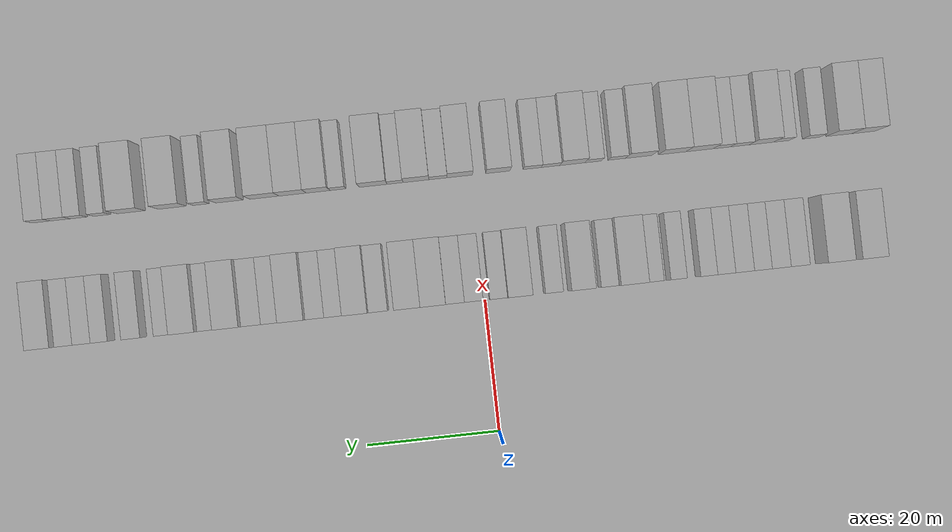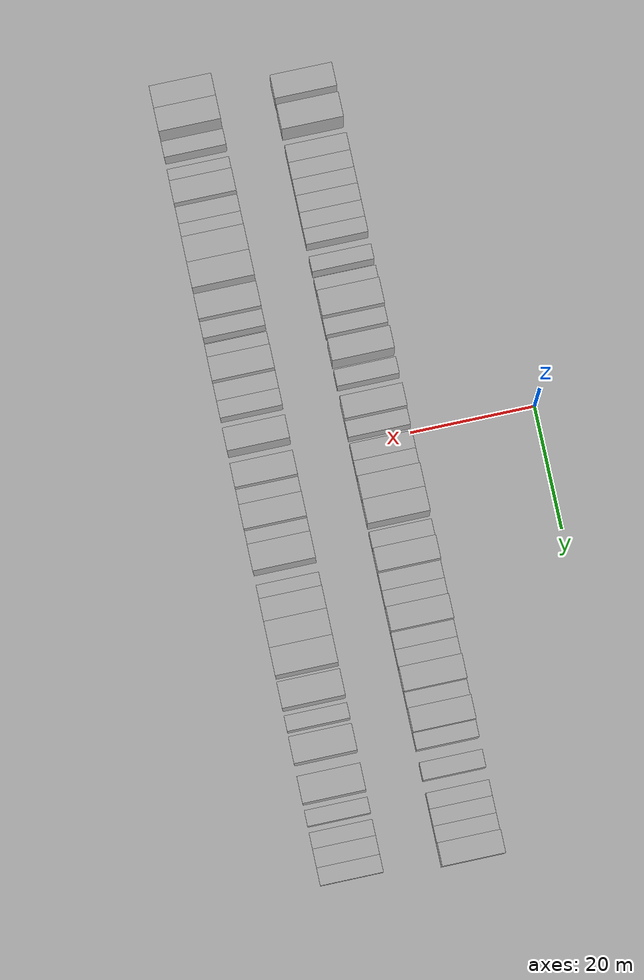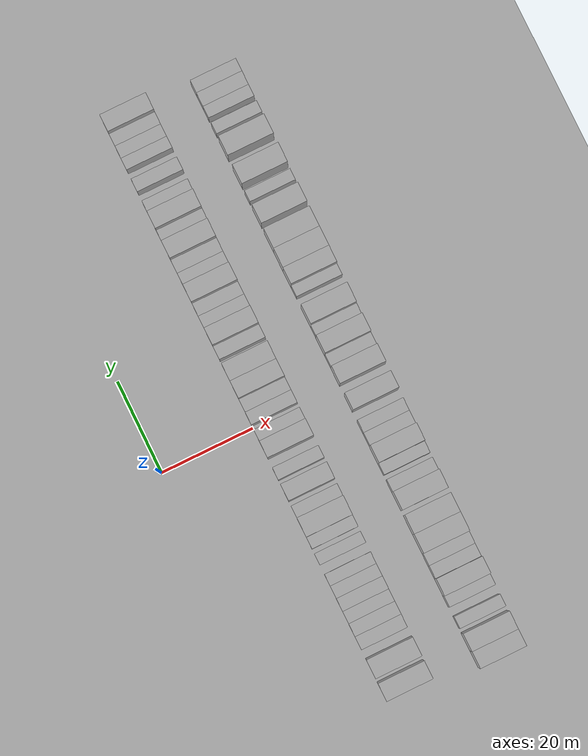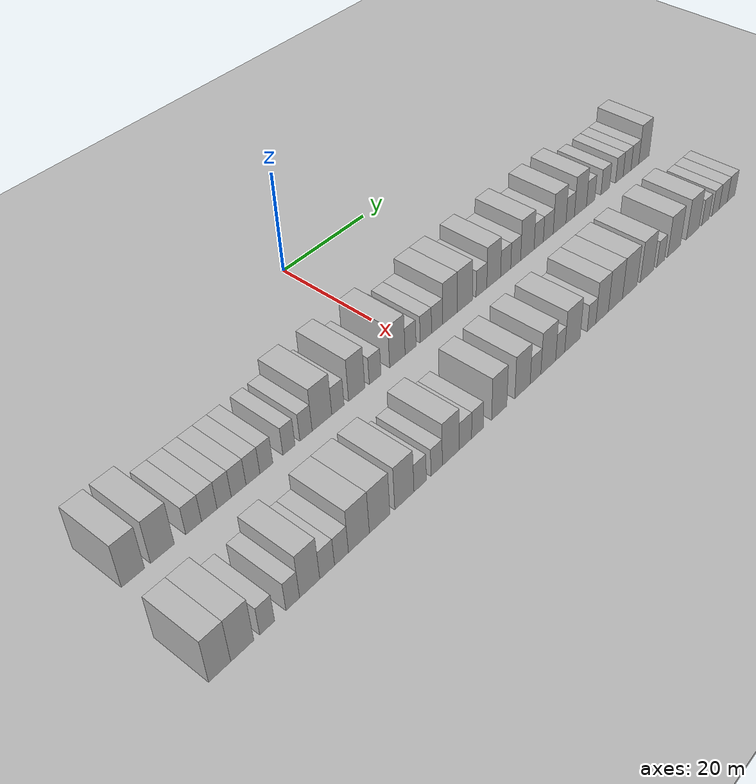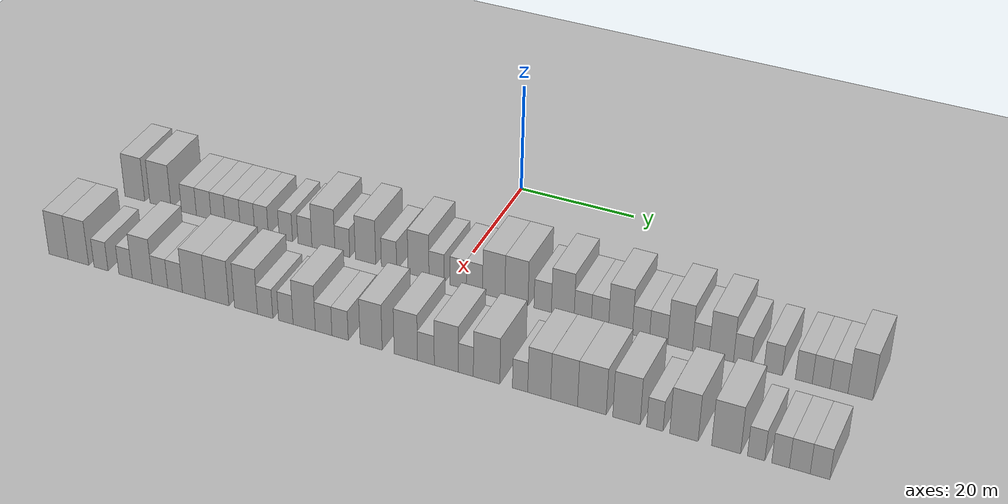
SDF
<sdf version="1.6">
 <world name="default">
  <include><name>ground_plane_1</name><uri>model://HANNAS_ground_plane</uri></include>
  <include>
   <name>ground_plane_2</name>
   <uri>model://HANNAS_ground_plane</uri>
   <pose>100 0 0  0 0 0</pose>
  </include>
  <model name="building_35">
   <static>1</static>
   <pose>25.0000 -57.3016 0 0.000000 0.000000 0.000000</pose>
   <link name="link">
    <pose>0 0 4.50 0 0 0</pose>
    <collision name="collision"><geometry><box><size>10.0000 3.8441 9.0000</size></box></geometry></collision>
    <visual name="visual">
     <cast_shadows>0</cast_shadows>
     <geometry><box><size>10.0000 3.8441 9.0000</size></box></geometry>
     <material>
      <script>
       <uri>model://HANNAS_wall/materials/scripts</uri>
       <uri>model://HANNAS_wall/materials/textures</uri>
       <name>vrc/HANNAS_wall</name>
      </script>
     </material>
    </visual>
   </link>
  </model>
  <model name="building_36">
   <static>1</static>
   <pose>25.0000 -52.3429 0 0.000000 0.000000 0.000000</pose>
   <link name="link">
    <pose>0 0 4.50 0 0 0</pose>
    <collision name="collision"><geometry><box><size>10.0000 4.0732 9.0000</size></box></geometry></collision>
    <visual name="visual">
     <cast_shadows>0</cast_shadows>
     <geometry><box><size>10.0000 4.0732 9.0000</size></box></geometry>
     <material>
      <script>
       <uri>model://HANNAS_wall/materials/scripts</uri>
       <uri>model://HANNAS_wall/materials/textures</uri>
       <name>vrc/HANNAS_wall</name>
      </script>
     </material>
    </visual>
   </link>
  </model>
  <model name="building_37">
   <static>1</static>
   <pose>25.0000 -46.8894 0 0.000000 0.000000 0.000000</pose>
   <link name="link">
    <pose>0 0 3.00 0 0 0</pose>
    <collision name="collision"><geometry><box><size>10.0000 2.8339 6.0000</size></box></geometry></collision>
    <visual name="visual">
     <cast_shadows>0</cast_shadows>
     <geometry><box><size>10.0000 2.8339 6.0000</size></box></geometry>
     <material>
      <script>
       <uri>model://HANNAS_wall/materials/scripts</uri>
       <uri>model://HANNAS_wall/materials/textures</uri>
       <name>vrc/HANNAS_wall</name>
      </script>
     </material>
    </visual>
   </link>
  </model>
  <model name="building_38">
   <static>1</static>
   <pose>25.0000 -44.0632 0 0.000000 0.000000 0.000000</pose>
   <link name="link">
    <pose>0 0 3.00 0 0 0</pose>
    <collision name="collision"><geometry><box><size>10.0000 2.8184 6.0000</size></box></geometry></collision>
    <visual name="visual">
     <cast_shadows>0</cast_shadows>
     <geometry><box><size>10.0000 2.8184 6.0000</size></box></geometry>
     <material>
      <script>
       <uri>model://HANNAS_wall/materials/scripts</uri>
       <uri>model://HANNAS_wall/materials/textures</uri>
       <name>vrc/HANNAS_wall</name>
      </script>
     </material>
    </visual>
   </link>
  </model>
  <model name="building_39">
   <static>1</static>
   <pose>25.0000 -41.3340 0 0.000000 0.000000 0.000000</pose>
   <link name="link">
    <pose>0 0 3.00 0 0 0</pose>
    <collision name="collision"><geometry><box><size>10.0000 2.6401 6.0000</size></box></geometry></collision>
    <visual name="visual">
     <cast_shadows>0</cast_shadows>
     <geometry><box><size>10.0000 2.6401 6.0000</size></box></geometry>
     <material>
      <script>
       <uri>model://HANNAS_wall/materials/scripts</uri>
       <uri>model://HANNAS_wall/materials/textures</uri>
       <name>vrc/HANNAS_wall</name>
      </script>
     </material>
    </visual>
   </link>
  </model>
  <model name="building_40">
   <static>1</static>
   <pose>25.0000 -38.6188 0 0.000000 0.000000 0.000000</pose>
   <link name="link">
    <pose>0 0 3.00 0 0 0</pose>
    <collision name="collision"><geometry><box><size>10.0000 2.7902 6.0000</size></box></geometry></collision>
    <visual name="visual">
     <cast_shadows>0</cast_shadows>
     <geometry><box><size>10.0000 2.7902 6.0000</size></box></geometry>
     <material>
      <script>
       <uri>model://HANNAS_wall/materials/scripts</uri>
       <uri>model://HANNAS_wall/materials/textures</uri>
       <name>vrc/HANNAS_wall</name>
      </script>
     </material>
    </visual>
   </link>
  </model>
  <model name="building_41">
   <static>1</static>
   <pose>25.0000 -35.8860 0 0.000000 0.000000 0.000000</pose>
   <link name="link">
    <pose>0 0 3.00 0 0 0</pose>
    <collision name="collision"><geometry><box><size>10.0000 2.6753 6.0000</size></box></geometry></collision>
    <visual name="visual">
     <cast_shadows>0</cast_shadows>
     <geometry><box><size>10.0000 2.6753 6.0000</size></box></geometry>
     <material>
      <script>
       <uri>model://HANNAS_wall/materials/scripts</uri>
       <uri>model://HANNAS_wall/materials/textures</uri>
       <name>vrc/HANNAS_wall</name>
      </script>
     </material>
    </visual>
   </link>
  </model>
  <model name="building_42">
   <static>1</static>
   <pose>25.0000 -33.2799 0 0.000000 0.000000 0.000000</pose>
   <link name="link">
    <pose>0 0 3.00 0 0 0</pose>
    <collision name="collision"><geometry><box><size>10.0000 2.5370 6.0000</size></box></geometry></collision>
    <visual name="visual">
     <cast_shadows>0</cast_shadows>
     <geometry><box><size>10.0000 2.5370 6.0000</size></box></geometry>
     <material>
      <script>
       <uri>model://HANNAS_wall/materials/scripts</uri>
       <uri>model://HANNAS_wall/materials/textures</uri>
       <name>vrc/HANNAS_wall</name>
      </script>
     </material>
    </visual>
   </link>
  </model>
  <model name="building_43">
   <static>1</static>
   <pose>25.0000 -28.7839 0 0.000000 0.000000 0.000000</pose>
   <link name="link">
    <pose>0 0 3.00 0 0 0</pose>
    <collision name="collision"><geometry><box><size>10.0000 2.4548 6.0000</size></box></geometry></collision>
    <visual name="visual">
     <cast_shadows>0</cast_shadows>
     <geometry><box><size>10.0000 2.4548 6.0000</size></box></geometry>
     <material>
      <script>
       <uri>model://HANNAS_wall/materials/scripts</uri>
       <uri>model://HANNAS_wall/materials/textures</uri>
       <name>vrc/HANNAS_wall</name>
      </script>
     </material>
    </visual>
   </link>
  </model>
  <model name="building_44">
   <static>1</static>
   <pose>25.0000 -25.2906 0 0.000000 0.000000 0.000000</pose>
   <link name="link">
    <pose>0 0 3.00 0 0 0</pose>
    <collision name="collision"><geometry><box><size>10.0000 2.5318 6.0000</size></box></geometry></collision>
    <visual name="visual">
     <cast_shadows>0</cast_shadows>
     <geometry><box><size>10.0000 2.5318 6.0000</size></box></geometry>
     <material>
      <script>
       <uri>model://HANNAS_wall/materials/scripts</uri>
       <uri>model://HANNAS_wall/materials/textures</uri>
       <name>vrc/HANNAS_wall</name>
      </script>
     </material>
    </visual>
   </link>
  </model>
  <model name="building_45">
   <static>1</static>
   <pose>25.0000 -21.9385 0 0.000000 0.000000 0.000000</pose>
   <link name="link">
    <pose>0 0 4.50 0 0 0</pose>
    <collision name="collision"><geometry><box><size>10.0000 4.1725 9.0000</size></box></geometry></collision>
    <visual name="visual">
     <cast_shadows>0</cast_shadows>
     <geometry><box><size>10.0000 4.1725 9.0000</size></box></geometry>
     <material>
      <script>
       <uri>model://HANNAS_wall/materials/scripts</uri>
       <uri>model://HANNAS_wall/materials/textures</uri>
       <name>vrc/HANNAS_wall</name>
      </script>
     </material>
    </visual>
   </link>
  </model>
  <model name="building_46">
   <static>1</static>
   <pose>25.0000 -18.5288 0 0.000000 0.000000 0.000000</pose>
   <link name="link">
    <pose>0 0 3.00 0 0 0</pose>
    <collision name="collision"><geometry><box><size>10.0000 2.6469 6.0000</size></box></geometry></collision>
    <visual name="visual">
     <cast_shadows>0</cast_shadows>
     <geometry><box><size>10.0000 2.6469 6.0000</size></box></geometry>
     <material>
      <script>
       <uri>model://HANNAS_wall/materials/scripts</uri>
       <uri>model://HANNAS_wall/materials/textures</uri>
       <name>vrc/HANNAS_wall</name>
      </script>
     </material>
    </visual>
   </link>
  </model>
  <model name="building_47">
   <static>1</static>
   <pose>25.0000 -14.3986 0 0.000000 0.000000 0.000000</pose>
   <link name="link">
    <pose>0 0 4.50 0 0 0</pose>
    <collision name="collision"><geometry><box><size>10.0000 3.6133 9.0000</size></box></geometry></collision>
    <visual name="visual">
     <cast_shadows>0</cast_shadows>
     <geometry><box><size>10.0000 3.6133 9.0000</size></box></geometry>
     <material>
      <script>
       <uri>model://HANNAS_wall/materials/scripts</uri>
       <uri>model://HANNAS_wall/materials/textures</uri>
       <name>vrc/HANNAS_wall</name>
      </script>
     </material>
    </visual>
   </link>
  </model>
  <model name="building_48">
   <static>1</static>
   <pose>25.0000 -10.2486 0 0.000000 0.000000 0.000000</pose>
   <link name="link">
    <pose>0 0 3.00 0 0 0</pose>
    <collision name="collision"><geometry><box><size>10.0000 2.6869 6.0000</size></box></geometry></collision>
    <visual name="visual">
     <cast_shadows>0</cast_shadows>
     <geometry><box><size>10.0000 2.6869 6.0000</size></box></geometry>
     <material>
      <script>
       <uri>model://HANNAS_wall/materials/scripts</uri>
       <uri>model://HANNAS_wall/materials/textures</uri>
       <name>vrc/HANNAS_wall</name>
      </script>
     </material>
    </visual>
   </link>
  </model>
  <model name="building_49">
   <static>1</static>
   <pose>25.0000 -5.0810 0 0.000000 0.000000 0.000000</pose>
   <link name="link">
    <pose>0 0 4.50 0 0 0</pose>
    <collision name="collision"><geometry><box><size>10.0000 3.6483 9.0000</size></box></geometry></collision>
    <visual name="visual">
     <cast_shadows>0</cast_shadows>
     <geometry><box><size>10.0000 3.6483 9.0000</size></box></geometry>
     <material>
      <script>
       <uri>model://HANNAS_wall/materials/scripts</uri>
       <uri>model://HANNAS_wall/materials/textures</uri>
       <name>vrc/HANNAS_wall</name>
      </script>
     </material>
    </visual>
   </link>
  </model>
  <model name="building_50">
   <static>1</static>
   <pose>25.0000 -1.9401 0 0.000000 0.000000 0.000000</pose>
   <link name="link">
    <pose>0 0 3.00 0 0 0</pose>
    <collision name="collision"><geometry><box><size>10.0000 2.6334 6.0000</size></box></geometry></collision>
    <visual name="visual">
     <cast_shadows>0</cast_shadows>
     <geometry><box><size>10.0000 2.6334 6.0000</size></box></geometry>
     <material>
      <script>
       <uri>model://HANNAS_wall/materials/scripts</uri>
       <uri>model://HANNAS_wall/materials/textures</uri>
       <name>vrc/HANNAS_wall</name>
      </script>
     </material>
    </visual>
   </link>
  </model>
  <model name="building_51">
   <static>1</static>
   <pose>25.0000 1.7735 0 0.000000 0.000000 0.000000</pose>
   <link name="link">
    <pose>0 0 3.00 0 0 0</pose>
    <collision name="collision"><geometry><box><size>10.0000 2.7938 6.0000</size></box></geometry></collision>
    <visual name="visual">
     <cast_shadows>0</cast_shadows>
     <geometry><box><size>10.0000 2.7938 6.0000</size></box></geometry>
     <material>
      <script>
       <uri>model://HANNAS_wall/materials/scripts</uri>
       <uri>model://HANNAS_wall/materials/textures</uri>
       <name>vrc/HANNAS_wall</name>
      </script>
     </material>
    </visual>
   </link>
  </model>
  <model name="building_52">
   <static>1</static>
   <pose>25.0000 4.5672 0 0.000000 0.000000 0.000000</pose>
   <link name="link">
    <pose>0 0 3.00 0 0 0</pose>
    <collision name="collision"><geometry><box><size>10.0000 2.7934 6.0000</size></box></geometry></collision>
    <visual name="visual">
     <cast_shadows>0</cast_shadows>
     <geometry><box><size>10.0000 2.7934 6.0000</size></box></geometry>
     <material>
      <script>
       <uri>model://HANNAS_wall/materials/scripts</uri>
       <uri>model://HANNAS_wall/materials/textures</uri>
       <name>vrc/HANNAS_wall</name>
      </script>
     </material>
    </visual>
   </link>
  </model>
  <model name="building_53">
   <static>1</static>
   <pose>25.0000 7.8485 0 0.000000 0.000000 0.000000</pose>
   <link name="link">
    <pose>0 0 4.50 0 0 0</pose>
    <collision name="collision"><geometry><box><size>10.0000 3.7693 9.0000</size></box></geometry></collision>
    <visual name="visual">
     <cast_shadows>0</cast_shadows>
     <geometry><box><size>10.0000 3.7693 9.0000</size></box></geometry>
     <material>
      <script>
       <uri>model://HANNAS_wall/materials/scripts</uri>
       <uri>model://HANNAS_wall/materials/textures</uri>
       <name>vrc/HANNAS_wall</name>
      </script>
     </material>
    </visual>
   </link>
  </model>
  <model name="building_54">
   <static>1</static>
   <pose>25.0000 11.6769 0 0.000000 0.000000 0.000000</pose>
   <link name="link">
    <pose>0 0 4.50 0 0 0</pose>
    <collision name="collision"><geometry><box><size>10.0000 3.8874 9.0000</size></box></geometry></collision>
    <visual name="visual">
     <cast_shadows>0</cast_shadows>
     <geometry><box><size>10.0000 3.8874 9.0000</size></box></geometry>
     <material>
      <script>
       <uri>model://HANNAS_wall/materials/scripts</uri>
       <uri>model://HANNAS_wall/materials/textures</uri>
       <name>vrc/HANNAS_wall</name>
      </script>
     </material>
    </visual>
   </link>
  </model>
  <model name="building_55">
   <static>1</static>
   <pose>25.0000 16.0649 0 0.000000 0.000000 0.000000</pose>
   <link name="link">
    <pose>0 0 3.00 0 0 0</pose>
    <collision name="collision"><geometry><box><size>10.0000 2.8887 6.0000</size></box></geometry></collision>
    <visual name="visual">
     <cast_shadows>0</cast_shadows>
     <geometry><box><size>10.0000 2.8887 6.0000</size></box></geometry>
     <material>
      <script>
       <uri>model://HANNAS_wall/materials/scripts</uri>
       <uri>model://HANNAS_wall/materials/textures</uri>
       <name>vrc/HANNAS_wall</name>
      </script>
     </material>
    </visual>
   </link>
  </model>
  <model name="building_56">
   <static>1</static>
   <pose>25.0000 19.3862 0 0.000000 0.000000 0.000000</pose>
   <link name="link">
    <pose>0 0 4.50 0 0 0</pose>
    <collision name="collision"><geometry><box><size>10.0000 3.7539 9.0000</size></box></geometry></collision>
    <visual name="visual">
     <cast_shadows>0</cast_shadows>
     <geometry><box><size>10.0000 3.7539 9.0000</size></box></geometry>
     <material>
      <script>
       <uri>model://HANNAS_wall/materials/scripts</uri>
       <uri>model://HANNAS_wall/materials/textures</uri>
       <name>vrc/HANNAS_wall</name>
      </script>
     </material>
    </visual>
   </link>
  </model>
  <model name="building_57">
   <static>1</static>
   <pose>25.0000 22.6786 0 0.000000 0.000000 0.000000</pose>
   <link name="link">
    <pose>0 0 3.00 0 0 0</pose>
    <collision name="collision"><geometry><box><size>10.0000 2.8309 6.0000</size></box></geometry></collision>
    <visual name="visual">
     <cast_shadows>0</cast_shadows>
     <geometry><box><size>10.0000 2.8309 6.0000</size></box></geometry>
     <material>
      <script>
       <uri>model://HANNAS_wall/materials/scripts</uri>
       <uri>model://HANNAS_wall/materials/textures</uri>
       <name>vrc/HANNAS_wall</name>
      </script>
     </material>
    </visual>
   </link>
  </model>
  <model name="building_58">
   <static>1</static>
   <pose>25.0000 25.4941 0 0.000000 0.000000 0.000000</pose>
   <link name="link">
    <pose>0 0 3.00 0 0 0</pose>
    <collision name="collision"><geometry><box><size>10.0000 2.8000 6.0000</size></box></geometry></collision>
    <visual name="visual">
     <cast_shadows>0</cast_shadows>
     <geometry><box><size>10.0000 2.8000 6.0000</size></box></geometry>
     <material>
      <script>
       <uri>model://HANNAS_wall/materials/scripts</uri>
       <uri>model://HANNAS_wall/materials/textures</uri>
       <name>vrc/HANNAS_wall</name>
      </script>
     </material>
    </visual>
   </link>
  </model>
  <model name="building_59">
   <static>1</static>
   <pose>25.0000 28.8287 0 0.000000 0.000000 0.000000</pose>
   <link name="link">
    <pose>0 0 4.50 0 0 0</pose>
    <collision name="collision"><geometry><box><size>10.0000 3.8693 9.0000</size></box></geometry></collision>
    <visual name="visual">
     <cast_shadows>0</cast_shadows>
     <geometry><box><size>10.0000 3.8693 9.0000</size></box></geometry>
     <material>
      <script>
       <uri>model://HANNAS_wall/materials/scripts</uri>
       <uri>model://HANNAS_wall/materials/textures</uri>
       <name>vrc/HANNAS_wall</name>
      </script>
     </material>
    </visual>
   </link>
  </model>
  <model name="building_60">
   <static>1</static>
   <pose>25.0000 32.1328 0 0.000000 0.000000 0.000000</pose>
   <link name="link">
    <pose>0 0 3.00 0 0 0</pose>
    <collision name="collision"><geometry><box><size>10.0000 2.7389 6.0000</size></box></geometry></collision>
    <visual name="visual">
     <cast_shadows>0</cast_shadows>
     <geometry><box><size>10.0000 2.7389 6.0000</size></box></geometry>
     <material>
      <script>
       <uri>model://HANNAS_wall/materials/scripts</uri>
       <uri>model://HANNAS_wall/materials/textures</uri>
       <name>vrc/HANNAS_wall</name>
      </script>
     </material>
    </visual>
   </link>
  </model>
  <model name="building_61">
   <static>1</static>
   <pose>25.0000 34.9727 0 0.000000 0.000000 0.000000</pose>
   <link name="link">
    <pose>0 0 3.00 0 0 0</pose>
    <collision name="collision"><geometry><box><size>10.0000 2.9410 6.0000</size></box></geometry></collision>
    <visual name="visual">
     <cast_shadows>0</cast_shadows>
     <geometry><box><size>10.0000 2.9410 6.0000</size></box></geometry>
     <material>
      <script>
       <uri>model://HANNAS_wall/materials/scripts</uri>
       <uri>model://HANNAS_wall/materials/textures</uri>
       <name>vrc/HANNAS_wall</name>
      </script>
     </material>
    </visual>
   </link>
  </model>
  <model name="building_62">
   <static>1</static>
   <pose>25.0000 38.3796 0 0.000000 0.000000 0.000000</pose>
   <link name="link">
    <pose>0 0 4.50 0 0 0</pose>
    <collision name="collision"><geometry><box><size>10.0000 3.8727 9.0000</size></box></geometry></collision>
    <visual name="visual">
     <cast_shadows>0</cast_shadows>
     <geometry><box><size>10.0000 3.8727 9.0000</size></box></geometry>
     <material>
      <script>
       <uri>model://HANNAS_wall/materials/scripts</uri>
       <uri>model://HANNAS_wall/materials/textures</uri>
       <name>vrc/HANNAS_wall</name>
      </script>
     </material>
    </visual>
   </link>
  </model>
  <model name="building_63">
   <static>1</static>
   <pose>25.0000 41.6338 0 0.000000 0.000000 0.000000</pose>
   <link name="link">
    <pose>0 0 3.00 0 0 0</pose>
    <collision name="collision"><geometry><box><size>10.0000 2.6359 6.0000</size></box></geometry></collision>
    <visual name="visual">
     <cast_shadows>0</cast_shadows>
     <geometry><box><size>10.0000 2.6359 6.0000</size></box></geometry>
     <material>
      <script>
       <uri>model://HANNAS_wall/materials/scripts</uri>
       <uri>model://HANNAS_wall/materials/textures</uri>
       <name>vrc/HANNAS_wall</name>
      </script>
     </material>
    </visual>
   </link>
  </model>
  <model name="building_64">
   <static>1</static>
   <pose>25.0000 44.8559 0 0.000000 0.000000 0.000000</pose>
   <link name="link">
    <pose>0 0 4.50 0 0 0</pose>
    <collision name="collision"><geometry><box><size>10.0000 3.8082 9.0000</size></box></geometry></collision>
    <visual name="visual">
     <cast_shadows>0</cast_shadows>
     <geometry><box><size>10.0000 3.8082 9.0000</size></box></geometry>
     <material>
      <script>
       <uri>model://HANNAS_wall/materials/scripts</uri>
       <uri>model://HANNAS_wall/materials/textures</uri>
       <name>vrc/HANNAS_wall</name>
      </script>
     </material>
    </visual>
   </link>
  </model>
  <model name="building_65">
   <static>1</static>
   <pose>25.0000 48.1008 0 0.000000 0.000000 0.000000</pose>
   <link name="link">
    <pose>0 0 3.00 0 0 0</pose>
    <collision name="collision"><geometry><box><size>10.0000 2.6816 6.0000</size></box></geometry></collision>
    <visual name="visual">
     <cast_shadows>0</cast_shadows>
     <geometry><box><size>10.0000 2.6816 6.0000</size></box></geometry>
     <material>
      <script>
       <uri>model://HANNAS_wall/materials/scripts</uri>
       <uri>model://HANNAS_wall/materials/textures</uri>
       <name>vrc/HANNAS_wall</name>
      </script>
     </material>
    </visual>
   </link>
  </model>
  <model name="building_66">
   <static>1</static>
   <pose>25.0000 52.8539 0 0.000000 0.000000 0.000000</pose>
   <link name="link">
    <pose>0 0 3.00 0 0 0</pose>
    <collision name="collision"><geometry><box><size>10.0000 2.8246 6.0000</size></box></geometry></collision>
    <visual name="visual">
     <cast_shadows>0</cast_shadows>
     <geometry><box><size>10.0000 2.8246 6.0000</size></box></geometry>
     <material>
      <script>
       <uri>model://HANNAS_wall/materials/scripts</uri>
       <uri>model://HANNAS_wall/materials/textures</uri>
       <name>vrc/HANNAS_wall</name>
      </script>
     </material>
    </visual>
   </link>
  </model>
  <model name="building_67">
   <static>1</static>
   <pose>25.0000 57.5424 0 0.000000 0.000000 0.000000</pose>
   <link name="link">
    <pose>0 0 3.00 0 0 0</pose>
    <collision name="collision"><geometry><box><size>10.0000 2.5524 6.0000</size></box></geometry></collision>
    <visual name="visual">
     <cast_shadows>0</cast_shadows>
     <geometry><box><size>10.0000 2.5524 6.0000</size></box></geometry>
     <material>
      <script>
       <uri>model://HANNAS_wall/materials/scripts</uri>
       <uri>model://HANNAS_wall/materials/textures</uri>
       <name>vrc/HANNAS_wall</name>
      </script>
     </material>
    </visual>
   </link>
  </model>
  <model name="building_68">
   <static>1</static>
   <pose>25.0000 60.1682 0 0.000000 0.000000 0.000000</pose>
   <link name="link">
    <pose>0 0 3.00 0 0 0</pose>
    <collision name="collision"><geometry><box><size>10.0000 2.6992 6.0000</size></box></geometry></collision>
    <visual name="visual">
     <cast_shadows>0</cast_shadows>
     <geometry><box><size>10.0000 2.6992 6.0000</size></box></geometry>
     <material>
      <script>
       <uri>model://HANNAS_wall/materials/scripts</uri>
       <uri>model://HANNAS_wall/materials/textures</uri>
       <name>vrc/HANNAS_wall</name>
      </script>
     </material>
    </visual>
   </link>
  </model>
  <model name="building_69">
   <static>1</static>
   <pose>25.0000 62.8585 0 0.000000 0.000000 0.000000</pose>
   <link name="link">
    <pose>0 0 3.00 0 0 0</pose>
    <collision name="collision"><geometry><box><size>10.0000 2.6814 6.0000</size></box></geometry></collision>
    <visual name="visual">
     <cast_shadows>0</cast_shadows>
     <geometry><box><size>10.0000 2.6814 6.0000</size></box></geometry>
     <material>
      <script>
       <uri>model://HANNAS_wall/materials/scripts</uri>
       <uri>model://HANNAS_wall/materials/textures</uri>
       <name>vrc/HANNAS_wall</name>
      </script>
     </material>
    </visual>
   </link>
  </model>
  <model name="building_70">
   <static>1</static>
   <pose>25.0000 66.0436 0 0.000000 0.000000 0.000000</pose>
   <link name="link">
    <pose>0 0 4.50 0 0 0</pose>
    <collision name="collision"><geometry><box><size>10.0000 3.6887 9.0000</size></box></geometry></collision>
    <visual name="visual">
     <cast_shadows>0</cast_shadows>
     <geometry><box><size>10.0000 3.6887 9.0000</size></box></geometry>
     <material>
      <script>
       <uri>model://HANNAS_wall/materials/scripts</uri>
       <uri>model://HANNAS_wall/materials/textures</uri>
       <name>vrc/HANNAS_wall</name>
      </script>
     </material>
    </visual>
   </link>
  </model>
  <model name="building_139">
   <static>1</static>
   <pose>44.0000 -59.7248 0 0.000000 0.000000 0.000000</pose>
   <link name="link">
    <pose>0 0 4.50 0 0 0</pose>
    <collision name="collision"><geometry><box><size>10.0000 3.6235 9.0000</size></box></geometry></collision>
    <visual name="visual">
     <cast_shadows>0</cast_shadows>
     <geometry><box><size>10.0000 3.6235 9.0000</size></box></geometry>
     <material>
      <script>
       <uri>model://HANNAS_wall/materials/scripts</uri>
       <uri>model://HANNAS_wall/materials/textures</uri>
       <name>vrc/HANNAS_wall</name>
      </script>
     </material>
    </visual>
   </link>
  </model>
  <model name="building_140">
   <static>1</static>
   <pose>44.0000 -55.9818 0 0.000000 0.000000 0.000000</pose>
   <link name="link">
    <pose>0 0 4.50 0 0 0</pose>
    <collision name="collision"><geometry><box><size>10.0000 3.8625 9.0000</size></box></geometry></collision>
    <visual name="visual">
     <cast_shadows>0</cast_shadows>
     <geometry><box><size>10.0000 3.8625 9.0000</size></box></geometry>
     <material>
      <script>
       <uri>model://HANNAS_wall/materials/scripts</uri>
       <uri>model://HANNAS_wall/materials/textures</uri>
       <name>vrc/HANNAS_wall</name>
      </script>
     </material>
    </visual>
   </link>
  </model>
  <model name="building_141">
   <static>1</static>
   <pose>44.0000 -51.7494 0 0.000000 0.000000 0.000000</pose>
   <link name="link">
    <pose>0 0 3.00 0 0 0</pose>
    <collision name="collision"><geometry><box><size>10.0000 2.6022 6.0000</size></box></geometry></collision>
    <visual name="visual">
     <cast_shadows>0</cast_shadows>
     <geometry><box><size>10.0000 2.6022 6.0000</size></box></geometry>
     <material>
      <script>
       <uri>model://HANNAS_wall/materials/scripts</uri>
       <uri>model://HANNAS_wall/materials/textures</uri>
       <name>vrc/HANNAS_wall</name>
      </script>
     </material>
    </visual>
   </link>
  </model>
  <model name="building_142">
   <static>1</static>
   <pose>44.0000 -47.2195 0 0.000000 0.000000 0.000000</pose>
   <link name="link">
    <pose>0 0 3.00 0 0 0</pose>
    <collision name="collision"><geometry><box><size>10.0000 2.4574 6.0000</size></box></geometry></collision>
    <visual name="visual">
     <cast_shadows>0</cast_shadows>
     <geometry><box><size>10.0000 2.4574 6.0000</size></box></geometry>
     <material>
      <script>
       <uri>model://HANNAS_wall/materials/scripts</uri>
       <uri>model://HANNAS_wall/materials/textures</uri>
       <name>vrc/HANNAS_wall</name>
      </script>
     </material>
    </visual>
   </link>
  </model>
  <model name="building_143">
   <static>1</static>
   <pose>44.0000 -44.1345 0 0.000000 0.000000 0.000000</pose>
   <link name="link">
    <pose>0 0 4.50 0 0 0</pose>
    <collision name="collision"><geometry><box><size>10.0000 3.7127 9.0000</size></box></geometry></collision>
    <visual name="visual">
     <cast_shadows>0</cast_shadows>
     <geometry><box><size>10.0000 3.7127 9.0000</size></box></geometry>
     <material>
      <script>
       <uri>model://HANNAS_wall/materials/scripts</uri>
       <uri>model://HANNAS_wall/materials/textures</uri>
       <name>vrc/HANNAS_wall</name>
      </script>
     </material>
    </visual>
   </link>
  </model>
  <model name="building_144">
   <static>1</static>
   <pose>44.0000 -40.8857 0 0.000000 0.000000 0.000000</pose>
   <link name="link">
    <pose>0 0 3.00 0 0 0</pose>
    <collision name="collision"><geometry><box><size>10.0000 2.7849 6.0000</size></box></geometry></collision>
    <visual name="visual">
     <cast_shadows>0</cast_shadows>
     <geometry><box><size>10.0000 2.7849 6.0000</size></box></geometry>
     <material>
      <script>
       <uri>model://HANNAS_wall/materials/scripts</uri>
       <uri>model://HANNAS_wall/materials/textures</uri>
       <name>vrc/HANNAS_wall</name>
      </script>
     </material>
    </visual>
   </link>
  </model>
  <model name="building_145">
   <static>1</static>
   <pose>44.0000 -38.1585 0 0.000000 0.000000 0.000000</pose>
   <link name="link">
    <pose>0 0 3.00 0 0 0</pose>
    <collision name="collision"><geometry><box><size>10.0000 2.6694 6.0000</size></box></geometry></collision>
    <visual name="visual">
     <cast_shadows>0</cast_shadows>
     <geometry><box><size>10.0000 2.6694 6.0000</size></box></geometry>
     <material>
      <script>
       <uri>model://HANNAS_wall/materials/scripts</uri>
       <uri>model://HANNAS_wall/materials/textures</uri>
       <name>vrc/HANNAS_wall</name>
      </script>
     </material>
    </visual>
   </link>
  </model>
  <model name="building_146">
   <static>1</static>
   <pose>44.0000 -34.7565 0 0.000000 0.000000 0.000000</pose>
   <link name="link">
    <pose>0 0 4.50 0 0 0</pose>
    <collision name="collision"><geometry><box><size>10.0000 4.1346 9.0000</size></box></geometry></collision>
    <visual name="visual">
     <cast_shadows>0</cast_shadows>
     <geometry><box><size>10.0000 4.1346 9.0000</size></box></geometry>
     <material>
      <script>
       <uri>model://HANNAS_wall/materials/scripts</uri>
       <uri>model://HANNAS_wall/materials/textures</uri>
       <name>vrc/HANNAS_wall</name>
      </script>
     </material>
    </visual>
   </link>
  </model>
  <model name="building_147">
   <static>1</static>
   <pose>44.0000 -30.6054 0 0.000000 0.000000 0.000000</pose>
   <link name="link">
    <pose>0 0 4.50 0 0 0</pose>
    <collision name="collision"><geometry><box><size>10.0000 4.1677 9.0000</size></box></geometry></collision>
    <visual name="visual">
     <cast_shadows>0</cast_shadows>
     <geometry><box><size>10.0000 4.1677 9.0000</size></box></geometry>
     <material>
      <script>
       <uri>model://HANNAS_wall/materials/scripts</uri>
       <uri>model://HANNAS_wall/materials/textures</uri>
       <name>vrc/HANNAS_wall</name>
      </script>
     </material>
    </visual>
   </link>
  </model>
  <model name="building_148">
   <static>1</static>
   <pose>44.0000 -25.5031 0 0.000000 0.000000 0.000000</pose>
   <link name="link">
    <pose>0 0 4.50 0 0 0</pose>
    <collision name="collision"><geometry><box><size>10.0000 4.0368 9.0000</size></box></geometry></collision>
    <visual name="visual">
     <cast_shadows>0</cast_shadows>
     <geometry><box><size>10.0000 4.0368 9.0000</size></box></geometry>
     <material>
      <script>
       <uri>model://HANNAS_wall/materials/scripts</uri>
       <uri>model://HANNAS_wall/materials/textures</uri>
       <name>vrc/HANNAS_wall</name>
      </script>
     </material>
    </visual>
   </link>
  </model>
  <model name="building_149">
   <static>1</static>
   <pose>44.0000 -22.1449 0 0.000000 0.000000 0.000000</pose>
   <link name="link">
    <pose>0 0 3.00 0 0 0</pose>
    <collision name="collision"><geometry><box><size>10.0000 2.6796 6.0000</size></box></geometry></collision>
    <visual name="visual">
     <cast_shadows>0</cast_shadows>
     <geometry><box><size>10.0000 2.6796 6.0000</size></box></geometry>
     <material>
      <script>
       <uri>model://HANNAS_wall/materials/scripts</uri>
       <uri>model://HANNAS_wall/materials/textures</uri>
       <name>vrc/HANNAS_wall</name>
      </script>
     </material>
    </visual>
   </link>
  </model>
  <model name="building_150">
   <static>1</static>
   <pose>44.0000 -18.5485 0 0.000000 0.000000 0.000000</pose>
   <link name="link">
    <pose>0 0 3.00 0 0 0</pose>
    <collision name="collision"><geometry><box><size>10.0000 2.5133 6.0000</size></box></geometry></collision>
    <visual name="visual">
     <cast_shadows>0</cast_shadows>
     <geometry><box><size>10.0000 2.5133 6.0000</size></box></geometry>
     <material>
      <script>
       <uri>model://HANNAS_wall/materials/scripts</uri>
       <uri>model://HANNAS_wall/materials/textures</uri>
       <name>vrc/HANNAS_wall</name>
      </script>
     </material>
    </visual>
   </link>
  </model>
  <model name="building_151">
   <static>1</static>
   <pose>44.0000 -15.3754 0 0.000000 0.000000 0.000000</pose>
   <link name="link">
    <pose>0 0 4.50 0 0 0</pose>
    <collision name="collision"><geometry><box><size>10.0000 3.8329 9.0000</size></box></geometry></collision>
    <visual name="visual">
     <cast_shadows>0</cast_shadows>
     <geometry><box><size>10.0000 3.8329 9.0000</size></box></geometry>
     <material>
      <script>
       <uri>model://HANNAS_wall/materials/scripts</uri>
       <uri>model://HANNAS_wall/materials/textures</uri>
       <name>vrc/HANNAS_wall</name>
      </script>
     </material>
    </visual>
   </link>
  </model>
  <model name="building_152">
   <static>1</static>
   <pose>44.0000 -12.0380 0 0.000000 0.000000 0.000000</pose>
   <link name="link">
    <pose>0 0 3.00 0 0 0</pose>
    <collision name="collision"><geometry><box><size>10.0000 2.8419 6.0000</size></box></geometry></collision>
    <visual name="visual">
     <cast_shadows>0</cast_shadows>
     <geometry><box><size>10.0000 2.8419 6.0000</size></box></geometry>
     <material>
      <script>
       <uri>model://HANNAS_wall/materials/scripts</uri>
       <uri>model://HANNAS_wall/materials/textures</uri>
       <name>vrc/HANNAS_wall</name>
      </script>
     </material>
    </visual>
   </link>
  </model>
  <model name="building_153">
   <static>1</static>
   <pose>44.0000 -9.2383 0 0.000000 0.000000 0.000000</pose>
   <link name="link">
    <pose>0 0 3.00 0 0 0</pose>
    <collision name="collision"><geometry><box><size>10.0000 2.7574 6.0000</size></box></geometry></collision>
    <visual name="visual">
     <cast_shadows>0</cast_shadows>
     <geometry><box><size>10.0000 2.7574 6.0000</size></box></geometry>
     <material>
      <script>
       <uri>model://HANNAS_wall/materials/scripts</uri>
       <uri>model://HANNAS_wall/materials/textures</uri>
       <name>vrc/HANNAS_wall</name>
      </script>
     </material>
    </visual>
   </link>
  </model>
  <model name="building_154">
   <static>1</static>
   <pose>44.0000 -4.0123 0 0.000000 0.000000 0.000000</pose>
   <link name="link">
    <pose>0 0 4.50 0 0 0</pose>
    <collision name="collision"><geometry><box><size>10.0000 3.6947 9.0000</size></box></geometry></collision>
    <visual name="visual">
     <cast_shadows>0</cast_shadows>
     <geometry><box><size>10.0000 3.6947 9.0000</size></box></geometry>
     <material>
      <script>
       <uri>model://HANNAS_wall/materials/scripts</uri>
       <uri>model://HANNAS_wall/materials/textures</uri>
       <name>vrc/HANNAS_wall</name>
      </script>
     </material>
    </visual>
   </link>
  </model>
  <model name="building_155">
   <static>1</static>
   <pose>44.0000 1.7662 0 0.000000 0.000000 0.000000</pose>
   <link name="link">
    <pose>0 0 4.50 0 0 0</pose>
    <collision name="collision"><geometry><box><size>10.0000 3.8622 9.0000</size></box></geometry></collision>
    <visual name="visual">
     <cast_shadows>0</cast_shadows>
     <geometry><box><size>10.0000 3.8622 9.0000</size></box></geometry>
     <material>
      <script>
       <uri>model://HANNAS_wall/materials/scripts</uri>
       <uri>model://HANNAS_wall/materials/textures</uri>
       <name>vrc/HANNAS_wall</name>
      </script>
     </material>
    </visual>
   </link>
  </model>
  <model name="building_156">
   <static>1</static>
   <pose>44.0000 5.0749 0 0.000000 0.000000 0.000000</pose>
   <link name="link">
    <pose>0 0 3.00 0 0 0</pose>
    <collision name="collision"><geometry><box><size>10.0000 2.7551 6.0000</size></box></geometry></collision>
    <visual name="visual">
     <cast_shadows>0</cast_shadows>
     <geometry><box><size>10.0000 2.7551 6.0000</size></box></geometry>
     <material>
      <script>
       <uri>model://HANNAS_wall/materials/scripts</uri>
       <uri>model://HANNAS_wall/materials/textures</uri>
       <name>vrc/HANNAS_wall</name>
      </script>
     </material>
    </visual>
   </link>
  </model>
  <model name="building_157">
   <static>1</static>
   <pose>44.0000 8.4119 0 0.000000 0.000000 0.000000</pose>
   <link name="link">
    <pose>0 0 4.50 0 0 0</pose>
    <collision name="collision"><geometry><box><size>10.0000 3.9190 9.0000</size></box></geometry></collision>
    <visual name="visual">
     <cast_shadows>0</cast_shadows>
     <geometry><box><size>10.0000 3.9190 9.0000</size></box></geometry>
     <material>
      <script>
       <uri>model://HANNAS_wall/materials/scripts</uri>
       <uri>model://HANNAS_wall/materials/textures</uri>
       <name>vrc/HANNAS_wall</name>
      </script>
     </material>
    </visual>
   </link>
  </model>
  <model name="building_158">
   <static>1</static>
   <pose>44.0000 11.5869 0 0.000000 0.000000 0.000000</pose>
   <link name="link">
    <pose>0 0 3.00 0 0 0</pose>
    <collision name="collision"><geometry><box><size>10.0000 2.4311 6.0000</size></box></geometry></collision>
    <visual name="visual">
     <cast_shadows>0</cast_shadows>
     <geometry><box><size>10.0000 2.4311 6.0000</size></box></geometry>
     <material>
      <script>
       <uri>model://HANNAS_wall/materials/scripts</uri>
       <uri>model://HANNAS_wall/materials/textures</uri>
       <name>vrc/HANNAS_wall</name>
      </script>
     </material>
    </visual>
   </link>
  </model>
  <model name="building_159">
   <static>1</static>
   <pose>44.0000 14.9344 0 0.000000 0.000000 0.000000</pose>
   <link name="link">
    <pose>0 0 4.50 0 0 0</pose>
    <collision name="collision"><geometry><box><size>10.0000 4.2639 9.0000</size></box></geometry></collision>
    <visual name="visual">
     <cast_shadows>0</cast_shadows>
     <geometry><box><size>10.0000 4.2639 9.0000</size></box></geometry>
     <material>
      <script>
       <uri>model://HANNAS_wall/materials/scripts</uri>
       <uri>model://HANNAS_wall/materials/textures</uri>
       <name>vrc/HANNAS_wall</name>
      </script>
     </material>
    </visual>
   </link>
  </model>
  <model name="building_160">
   <static>1</static>
   <pose>44.0000 20.2797 0 0.000000 0.000000 0.000000</pose>
   <link name="link">
    <pose>0 0 3.00 0 0 0</pose>
    <collision name="collision"><geometry><box><size>10.0000 2.4267 6.0000</size></box></geometry></collision>
    <visual name="visual">
     <cast_shadows>0</cast_shadows>
     <geometry><box><size>10.0000 2.4267 6.0000</size></box></geometry>
     <material>
      <script>
       <uri>model://HANNAS_wall/materials/scripts</uri>
       <uri>model://HANNAS_wall/materials/textures</uri>
       <name>vrc/HANNAS_wall</name>
      </script>
     </material>
    </visual>
   </link>
  </model>
  <model name="building_161">
   <static>1</static>
   <pose>44.0000 23.3004 0 0.000000 0.000000 0.000000</pose>
   <link name="link">
    <pose>0 0 4.50 0 0 0</pose>
    <collision name="collision"><geometry><box><size>10.0000 3.6147 9.0000</size></box></geometry></collision>
    <visual name="visual">
     <cast_shadows>0</cast_shadows>
     <geometry><box><size>10.0000 3.6147 9.0000</size></box></geometry>
     <material>
      <script>
       <uri>model://HANNAS_wall/materials/scripts</uri>
       <uri>model://HANNAS_wall/materials/textures</uri>
       <name>vrc/HANNAS_wall</name>
      </script>
     </material>
    </visual>
   </link>
  </model>
  <model name="building_162">
   <static>1</static>
   <pose>44.0000 27.2011 0 0.000000 0.000000 0.000000</pose>
   <link name="link">
    <pose>0 0 4.50 0 0 0</pose>
    <collision name="collision"><geometry><box><size>10.0000 4.1866 9.0000</size></box></geometry></collision>
    <visual name="visual">
     <cast_shadows>0</cast_shadows>
     <geometry><box><size>10.0000 4.1866 9.0000</size></box></geometry>
     <material>
      <script>
       <uri>model://HANNAS_wall/materials/scripts</uri>
       <uri>model://HANNAS_wall/materials/textures</uri>
       <name>vrc/HANNAS_wall</name>
      </script>
     </material>
    </visual>
   </link>
  </model>
  <model name="building_163">
   <static>1</static>
   <pose>44.0000 31.5119 0 0.000000 0.000000 0.000000</pose>
   <link name="link">
    <pose>0 0 4.50 0 0 0</pose>
    <collision name="collision"><geometry><box><size>10.0000 4.4351 9.0000</size></box></geometry></collision>
    <visual name="visual">
     <cast_shadows>0</cast_shadows>
     <geometry><box><size>10.0000 4.4351 9.0000</size></box></geometry>
     <material>
      <script>
       <uri>model://HANNAS_wall/materials/scripts</uri>
       <uri>model://HANNAS_wall/materials/textures</uri>
       <name>vrc/HANNAS_wall</name>
      </script>
     </material>
    </visual>
   </link>
  </model>
  <model name="building_164">
   <static>1</static>
   <pose>44.0000 36.8222 0 0.000000 0.000000 0.000000</pose>
   <link name="link">
    <pose>0 0 4.50 0 0 0</pose>
    <collision name="collision"><geometry><box><size>10.0000 4.1855 9.0000</size></box></geometry></collision>
    <visual name="visual">
     <cast_shadows>0</cast_shadows>
     <geometry><box><size>10.0000 4.1855 9.0000</size></box></geometry>
     <material>
      <script>
       <uri>model://HANNAS_wall/materials/scripts</uri>
       <uri>model://HANNAS_wall/materials/textures</uri>
       <name>vrc/HANNAS_wall</name>
      </script>
     </material>
    </visual>
   </link>
  </model>
  <model name="building_165">
   <static>1</static>
   <pose>44.0000 41.1498 0 0.000000 0.000000 0.000000</pose>
   <link name="link">
    <pose>0 0 3.00 0 0 0</pose>
    <collision name="collision"><geometry><box><size>10.0000 2.4698 6.0000</size></box></geometry></collision>
    <visual name="visual">
     <cast_shadows>0</cast_shadows>
     <geometry><box><size>10.0000 2.4698 6.0000</size></box></geometry>
     <material>
      <script>
       <uri>model://HANNAS_wall/materials/scripts</uri>
       <uri>model://HANNAS_wall/materials/textures</uri>
       <name>vrc/HANNAS_wall</name>
      </script>
     </material>
    </visual>
   </link>
  </model>
  <model name="building_166">
   <static>1</static>
   <pose>44.0000 45.5092 0 0.000000 0.000000 0.000000</pose>
   <link name="link">
    <pose>0 0 4.50 0 0 0</pose>
    <collision name="collision"><geometry><box><size>10.0000 4.2492 9.0000</size></box></geometry></collision>
    <visual name="visual">
     <cast_shadows>0</cast_shadows>
     <geometry><box><size>10.0000 4.2492 9.0000</size></box></geometry>
     <material>
      <script>
       <uri>model://HANNAS_wall/materials/scripts</uri>
       <uri>model://HANNAS_wall/materials/textures</uri>
       <name>vrc/HANNAS_wall</name>
      </script>
     </material>
    </visual>
   </link>
  </model>
  <model name="building_167">
   <static>1</static>
   <pose>44.0000 51.7699 0 0.000000 0.000000 0.000000</pose>
   <link name="link">
    <pose>0 0 4.50 0 0 0</pose>
    <collision name="collision"><geometry><box><size>10.0000 4.2721 9.0000</size></box></geometry></collision>
    <visual name="visual">
     <cast_shadows>0</cast_shadows>
     <geometry><box><size>10.0000 4.2721 9.0000</size></box></geometry>
     <material>
      <script>
       <uri>model://HANNAS_wall/materials/scripts</uri>
       <uri>model://HANNAS_wall/materials/textures</uri>
       <name>vrc/HANNAS_wall</name>
      </script>
     </material>
    </visual>
   </link>
  </model>
  <model name="building_168">
   <static>1</static>
   <pose>44.0000 56.1677 0 0.000000 0.000000 0.000000</pose>
   <link name="link">
    <pose>0 0 3.00 0 0 0</pose>
    <collision name="collision"><geometry><box><size>10.0000 2.5235 6.0000</size></box></geometry></collision>
    <visual name="visual">
     <cast_shadows>0</cast_shadows>
     <geometry><box><size>10.0000 2.5235 6.0000</size></box></geometry>
     <material>
      <script>
       <uri>model://HANNAS_wall/materials/scripts</uri>
       <uri>model://HANNAS_wall/materials/textures</uri>
       <name>vrc/HANNAS_wall</name>
      </script>
     </material>
    </visual>
   </link>
  </model>
  <model name="building_169">
   <static>1</static>
   <pose>44.0000 59.7105 0 0.000000 0.000000 0.000000</pose>
   <link name="link">
    <pose>0 0 3.00 0 0 0</pose>
    <collision name="collision"><geometry><box><size>10.0000 2.5621 6.0000</size></box></geometry></collision>
    <visual name="visual">
     <cast_shadows>0</cast_shadows>
     <geometry><box><size>10.0000 2.5621 6.0000</size></box></geometry>
     <material>
      <script>
       <uri>model://HANNAS_wall/materials/scripts</uri>
       <uri>model://HANNAS_wall/materials/textures</uri>
       <name>vrc/HANNAS_wall</name>
      </script>
     </material>
    </visual>
   </link>
  </model>
  <model name="building_170">
   <static>1</static>
   <pose>44.0000 62.4814 0 0.000000 0.000000 0.000000</pose>
   <link name="link">
    <pose>0 0 3.00 0 0 0</pose>
    <collision name="collision"><geometry><box><size>10.0000 2.9797 6.0000</size></box></geometry></collision>
    <visual name="visual">
     <cast_shadows>0</cast_shadows>
     <geometry><box><size>10.0000 2.9797 6.0000</size></box></geometry>
     <material>
      <script>
       <uri>model://HANNAS_wall/materials/scripts</uri>
       <uri>model://HANNAS_wall/materials/textures</uri>
       <name>vrc/HANNAS_wall</name>
      </script>
     </material>
    </visual>
   </link>
  </model>
  <model name="building_171">
   <static>1</static>
   <pose>44.0000 65.3730 0 0.000000 0.000000 0.000000</pose>
   <link name="link">
    <pose>0 0 3.00 0 0 0</pose>
    <collision name="collision"><geometry><box><size>10.0000 2.8036 6.0000</size></box></geometry></collision>
    <visual name="visual">
     <cast_shadows>0</cast_shadows>
     <geometry><box><size>10.0000 2.8036 6.0000</size></box></geometry>
     <material>
      <script>
       <uri>model://HANNAS_wall/materials/scripts</uri>
       <uri>model://HANNAS_wall/materials/textures</uri>
       <name>vrc/HANNAS_wall</name>
      </script>
     </material>
    </visual>
   </link>
  </model>
 </world>
</sdf>
